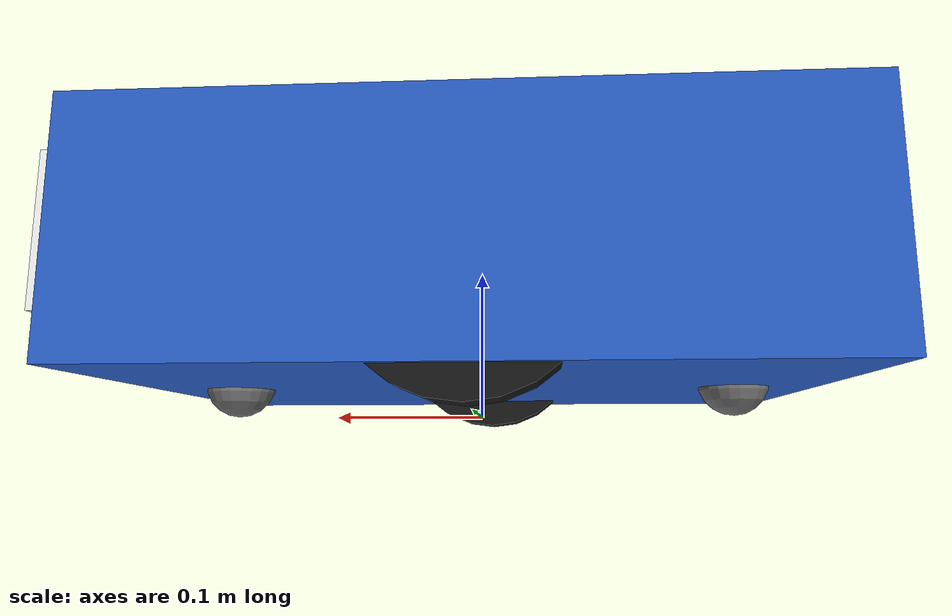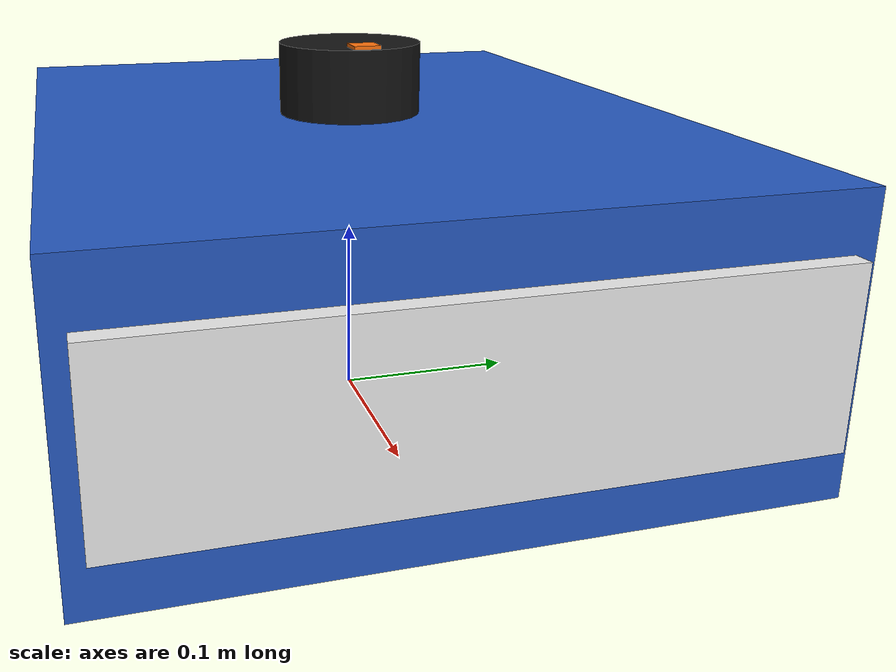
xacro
<?xml version="1.0"?>
<robot xmlns:xacro="http://www.ros.org/wiki/xacro" name="floor_cleaner">

  <xacro:arg name="use_sim" default="true"/>

  <!-- ===================== Dimensions ===================== -->
  <xacro:property name="chassis_length"   value="0.45"/>
  <xacro:property name="chassis_width"    value="0.35"/>
  <xacro:property name="chassis_height"   value="0.15"/>
  <xacro:property name="chassis_mass"     value="4.0"/>
  <xacro:property name="ground_clearance" value="0.02"/>

  <xacro:property name="wheel_radius"     value="0.075"/>
  <xacro:property name="wheel_width"      value="0.04"/>
  <xacro:property name="wheel_mass"       value="0.5"/>
  <xacro:property name="wheel_separation" value="0.30"/>

  <!-- Casters are 1 mm shorter than the drive wheels so the drive wheels
       always keep firm contact with the floor. -->
  <xacro:property name="caster_radius"    value="0.024"/>
  <xacro:property name="caster_mass"      value="0.1"/>
  <xacro:property name="caster_x_offset"  value="0.17"/>

  <xacro:include filename="$(find floor_cleaner)/urdf/materials.xacro"/>
  <xacro:include filename="$(find floor_cleaner)/urdf/inertial_macros.xacro"/>

  <!-- ===================== base_link ===================== -->
  <!-- Deliberately empty (no inertia): KDL/robot_state_publisher does not
       like an inertia on the root link. Gazebo merges the chassis mass into it. -->
  <link name="base_link"/>

  <joint name="base_footprint_joint" type="fixed">
    <parent link="base_link"/>
    <child link="base_footprint"/>
    <origin xyz="0 0 0" rpy="0 0 0"/>
  </joint>
  <link name="base_footprint"/>

  <!-- ===================== Chassis ===================== -->
  <joint name="chassis_joint" type="fixed">
    <parent link="base_link"/>
    <child link="chassis"/>
    <origin xyz="0 0 0" rpy="0 0 0"/>
  </joint>

  <link name="chassis">
    <visual>
      <origin xyz="0 0 ${ground_clearance + chassis_height/2}" rpy="0 0 0"/>
      <geometry>
        <box size="${chassis_length} ${chassis_width} ${chassis_height}"/>
      </geometry>
      <material name="cleaner_blue"/>
    </visual>
    <!-- white "bumper" strip on the front so you can tell front from back -->
    <visual>
      <origin xyz="${chassis_length/2 + 0.005} 0 ${ground_clearance + chassis_height/2}" rpy="0 0 0"/>
      <geometry>
        <box size="0.01 ${chassis_width - 0.02} ${chassis_height * 0.6}"/>
      </geometry>
      <material name="cleaner_white"/>
    </visual>
    <collision>
      <origin xyz="0 0 ${ground_clearance + chassis_height/2}" rpy="0 0 0"/>
      <geometry>
        <box size="${chassis_length} ${chassis_width} ${chassis_height}"/>
      </geometry>
    </collision>
    <xacro:inertial_box mass="${chassis_mass}" x="${chassis_length}" y="${chassis_width}" z="${chassis_height}">
      <origin xyz="0 0 ${ground_clearance + chassis_height/2}" rpy="0 0 0"/>
    </xacro:inertial_box>
  </link>

  <!-- ===================== Drive wheels ===================== -->
  <xacro:macro name="drive_wheel" params="prefix y_reflect">
    <joint name="${prefix}_wheel_joint" type="continuous">
      <parent link="base_link"/>
      <child link="${prefix}_wheel"/>
      <origin xyz="0 ${y_reflect * wheel_separation/2} ${wheel_radius}"
              rpy="${-y_reflect * pi/2} 0 0"/>
      <axis xyz="0 0 ${y_reflect}"/>
    </joint>

    <link name="${prefix}_wheel">
      <visual>
        <origin xyz="0 0 0" rpy="0 0 0"/>
        <geometry>
          <cylinder radius="${wheel_radius}" length="${wheel_width}"/>
        </geometry>
        <material name="cleaner_black"/>
      </visual>
      <collision>
        <origin xyz="0 0 0" rpy="0 0 0"/>
        <geometry>
          <cylinder radius="${wheel_radius}" length="${wheel_width}"/>
        </geometry>
      </collision>
      <xacro:inertial_cylinder mass="${wheel_mass}" length="${wheel_width}" radius="${wheel_radius}">
        <origin xyz="0 0 0" rpy="0 0 0"/>
      </xacro:inertial_cylinder>
    </link>

    <gazebo reference="${prefix}_wheel">
      <material>Gazebo/FlatBlack</material>
      <mu1>1.0</mu1>
      <mu2>1.0</mu2>
      <kp>1000000.0</kp>
      <kd>100.0</kd>
      <minDepth>0.001</minDepth>
      <maxVel>1.0</maxVel>
    </gazebo>
  </xacro:macro>

  <xacro:drive_wheel prefix="left"  y_reflect="1"/>
  <xacro:drive_wheel prefix="right" y_reflect="-1"/>

  <!-- ===================== Casters (frictionless spheres) ===================== -->
  <xacro:macro name="caster" params="prefix x">
    <joint name="${prefix}_caster_joint" type="fixed">
      <parent link="chassis"/>
      <child link="${prefix}_caster"/>
      <origin xyz="${x} 0 ${caster_radius + 0.001}" rpy="0 0 0"/>
    </joint>

    <link name="${prefix}_caster">
      <visual>
        <geometry>
          <sphere radius="${caster_radius}"/>
        </geometry>
        <material name="cleaner_grey"/>
      </visual>
      <collision>
        <geometry>
          <sphere radius="${caster_radius}"/>
        </geometry>
      </collision>
      <xacro:inertial_sphere mass="${caster_mass}" radius="${caster_radius}">
        <origin xyz="0 0 0" rpy="0 0 0"/>
      </xacro:inertial_sphere>
    </link>

    <gazebo reference="${prefix}_caster">
      <material>Gazebo/Grey</material>
      <mu1>0.001</mu1>
      <mu2>0.001</mu2>
    </gazebo>
  </xacro:macro>

  <xacro:caster prefix="front" x="${caster_x_offset}"/>
  <xacro:caster prefix="rear"  x="${-caster_x_offset}"/>

  <gazebo reference="chassis">
    <material>Gazebo/Blue</material>
  </gazebo>

  <!-- ===================== Sensors ===================== -->
  <xacro:include filename="$(find floor_cleaner)/urdf/lidar.xacro"/>

  <!-- ===================== Simulation-only plugins ===================== -->
  <xacro:if value="$(arg use_sim)">
    <xacro:include filename="$(find floor_cleaner)/urdf/gazebo_control.xacro"/>
  </xacro:if>

</robot>

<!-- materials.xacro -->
<robot xmlns:xacro="http://www.ros.org/wiki/xacro">

  <material name="cleaner_white">
    <color rgba="0.92 0.92 0.92 1.0"/>
  </material>

  <material name="cleaner_blue">
    <color rgba="0.15 0.35 0.75 1.0"/>
  </material>

  <material name="cleaner_black">
    <color rgba="0.08 0.08 0.08 1.0"/>
  </material>

  <material name="cleaner_grey">
    <color rgba="0.45 0.45 0.45 1.0"/>
  </material>

  <material name="cleaner_orange">
    <color rgba="1.0 0.45 0.05 1.0"/>
  </material>

</robot>

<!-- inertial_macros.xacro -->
<!-- Standard inertia formulas for simple shapes.
     Gazebo needs a mass + inertia on every link that moves,
     otherwise the physics engine ignores or explodes the link. -->
<robot xmlns:xacro="http://www.ros.org/wiki/xacro">

  <!-- Solid box: x = length, y = width, z = height -->
  <xacro:macro name="inertial_box" params="mass x y z *origin">
    <inertial>
      <xacro:insert_block name="origin"/>
      <mass value="${mass}"/>
      <inertia ixx="${mass * (y*y + z*z) / 12.0}" ixy="0.0" ixz="0.0"
               iyy="${mass * (x*x + z*z) / 12.0}" iyz="0.0"
               izz="${mass * (x*x + y*y) / 12.0}"/>
    </inertial>
  </xacro:macro>

  <!-- Solid cylinder whose axis is the link's local Z axis -->
  <xacro:macro name="inertial_cylinder" params="mass length radius *origin">
    <inertial>
      <xacro:insert_block name="origin"/>
      <mass value="${mass}"/>
      <inertia ixx="${mass * (3*radius*radius + length*length) / 12.0}" ixy="0.0" ixz="0.0"
               iyy="${mass * (3*radius*radius + length*length) / 12.0}" iyz="0.0"
               izz="${mass * radius * radius / 2.0}"/>
    </inertial>
  </xacro:macro>

  <!-- Solid sphere -->
  <xacro:macro name="inertial_sphere" params="mass radius *origin">
    <inertial>
      <xacro:insert_block name="origin"/>
      <mass value="${mass}"/>
      <inertia ixx="${2.0/5.0 * mass * radius * radius}" ixy="0.0" ixz="0.0"
               iyy="${2.0/5.0 * mass * radius * radius}" iyz="0.0"
               izz="${2.0/5.0 * mass * radius * radius}"/>
    </inertial>
  </xacro:macro>

</robot>

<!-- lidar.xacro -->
<!-- 2D LiDAR: physical link + (simulation only) Gazebo ray sensor.
     On the real robot only the link/joint are used; the real LiDAR
     driver publishes /scan in the same "laser" frame. -->
<robot xmlns:xacro="http://www.ros.org/wiki/xacro">

  <!-- LiDAR puck size (similar to an RPLIDAR A1/A2) -->
  <xacro:property name="lidar_radius" value="0.04"/>
  <xacro:property name="lidar_height" value="0.04"/>
  <xacro:property name="lidar_mass"   value="0.17"/>

  <!-- Mounted on the centre of the chassis roof.
       Height of the laser frame above the floor: 0.02 + 0.15 + 0.02 = 0.19 m -->
  <joint name="laser_joint" type="fixed">
    <parent link="base_link"/>
    <child link="laser"/>
    <origin xyz="0 0 ${ground_clearance + chassis_height + lidar_height/2}" rpy="0 0 0"/>
  </joint>

  <link name="laser">
    <visual>
      <origin xyz="0 0 0" rpy="0 0 0"/>
      <geometry>
        <cylinder radius="${lidar_radius}" length="${lidar_height}"/>
      </geometry>
      <material name="cleaner_black"/>
    </visual>
    <!-- small orange "front" marker so you can see the LiDAR orientation -->
    <visual>
      <origin xyz="${lidar_radius - 0.01} 0 ${lidar_height/2}" rpy="0 0 0"/>
      <geometry>
        <box size="0.015 0.015 0.004"/>
      </geometry>
      <material name="cleaner_orange"/>
    </visual>
    <collision>
      <origin xyz="0 0 0" rpy="0 0 0"/>
      <geometry>
        <cylinder radius="${lidar_radius}" length="${lidar_height}"/>
      </geometry>
    </collision>
    <xacro:inertial_cylinder mass="${lidar_mass}" length="${lidar_height}" radius="${lidar_radius}">
      <origin xyz="0 0 0" rpy="0 0 0"/>
    </xacro:inertial_cylinder>
  </link>

  <xacro:if value="$(arg use_sim)">
    <gazebo reference="laser">
      <material>Gazebo/FlatBlack</material>
      <sensor name="lidar_sensor" type="ray">
        <pose>0 0 0 0 0 0</pose>
        <always_on>true</always_on>
        <!-- set to true to draw the blue laser rays inside Gazebo -->
        <visualize>false</visualize>
        <update_rate>10</update_rate>
        <ray>
          <scan>
            <horizontal>
              <samples>360</samples>
              <resolution>1.0</resolution>
              <min_angle>-3.14159</min_angle>
              <max_angle>3.14159</max_angle>
            </horizontal>
          </scan>
          <range>
            <!-- min > lidar_radius so the LiDAR never sees its own body -->
            <min>0.12</min>
            <max>12.0</max>
            <resolution>0.01</resolution>
          </range>
          <noise>
            <type>gaussian</type>
            <mean>0.0</mean>
            <stddev>0.01</stddev>
          </noise>
        </ray>
        <plugin name="lidar_ros_plugin" filename="libgazebo_ros_ray_sensor.so">
          <ros>
            <!-- publish on /scan -->
            <remapping>~/out:=scan</remapping>
          </ros>
          <output_type>sensor_msgs/LaserScan</output_type>
          <frame_name>laser</frame_name>
        </plugin>
      </sensor>
    </gazebo>
  </xacro:if>

</robot>
